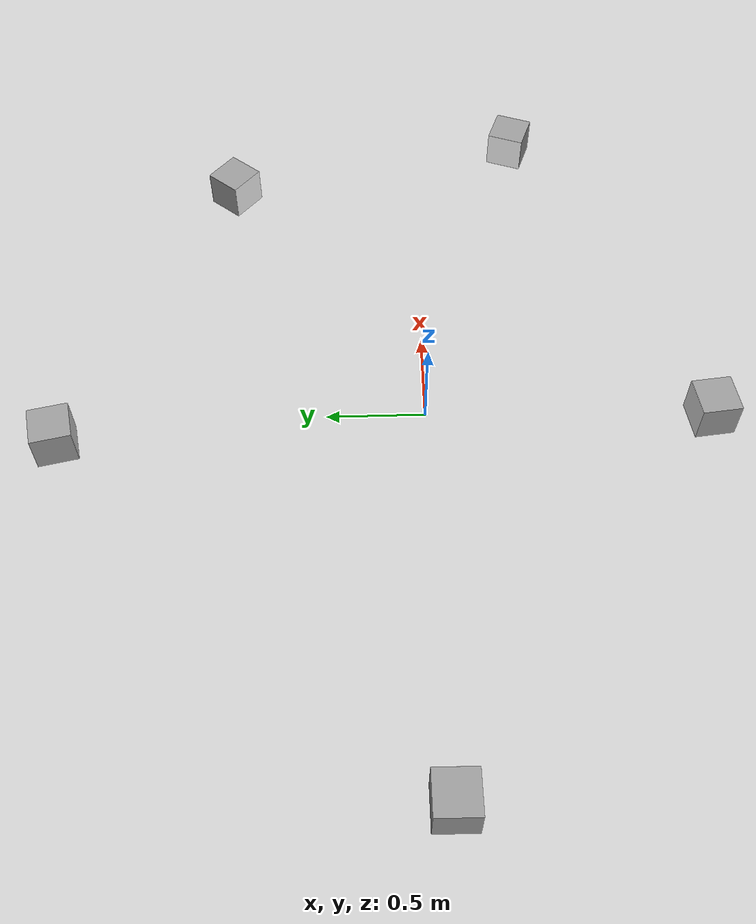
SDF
<sdf version="1.7">
 <world name="default">
  <light name="sun" type="directional">
   <pose>0 0 10 0 -0 0</pose>
   <diffuse>0.8 0.8 0.8 1</diffuse>
   <specular>0.2 0.2 0.2 1</specular>
   <attenuation>
    <range>1000</range>
    <constant>0.9</constant>
    <linear>0.01</linear>
    <quadratic>0.001</quadratic>
   </attenuation>
   <direction>-0.5 0.1 -0.9</direction>
   <spot><inner_angle>0</inner_angle><outer_angle>0</outer_angle><falloff>0</falloff></spot>
  </light>
  <model name="ground_plane">
   <static>1</static>
   <link name="link">
    <collision name="collision">
     <geometry><plane><normal>0 0 1</normal><size>100 100</size></plane></geometry>
     <surface>
      <contact><collide_bitmask>65535</collide_bitmask></contact>
      <friction><ode><mu>100</mu><mu2>50</mu2></ode></friction>
     </surface>
    </collision>
    <visual name="visual">
     <cast_shadows>0</cast_shadows>
     <geometry><plane><normal>0 0 1</normal><size>100 100</size></plane></geometry>
     <material>
      <script><uri>file://media/materials/scripts/gazebo.material</uri><name>Gazebo/Grey</name></script>
     </material>
    </visual>
   </link>
  </model>
  <gravity>0 0 -9.8</gravity>
  <magnetic_field>6e-06 2.3e-05 -4.2e-05</magnetic_field>
  <atmosphere type="adiabatic"/>
  <physics type="ode">
   <max_step_size>0.001</max_step_size>
   <real_time_factor>1</real_time_factor>
   <real_time_update_rate>1000</real_time_update_rate>
  </physics>
  <scene><ambient>0.4 0.4 0.4 1</ambient><background>0.7 0.7 0.7 1</background><shadows>1</shadows></scene>
  <spherical_coordinates>
   <surface_model>EARTH_WGS84</surface_model>
   <latitude_deg>0</latitude_deg>
   <longitude_deg>0</longitude_deg>
   <elevation>0</elevation>
   <heading_deg>0</heading_deg>
  </spherical_coordinates>
  <model name="Assignment1">
   <model name="marker11_box">
    <link name="marker">
     <inertial>
      <mass>0.1</mass>
      <inertia><ixx>0</ixx><ixy>0</ixy><ixz>0</ixz><iyy>0</iyy><iyz>0</iyz><izz>0</izz></inertia>
     </inertial>
     <self_collide>1</self_collide>
     <pose>-0.76428 -0.101106 0.120004 -0.015494 1.56996 -0.015507</pose>
     <visual name="visual">
      <geometry><box><size>0.2 0.2 0.001</size></box></geometry>
      <material>
       <script>
        <uri>model://marker11/material/scripts</uri>
        <uri>model://marker11/material/textures</uri>
        <name>Aruco/marker11</name>
       </script>
       <shader type="pixel"><normal_map>__default__</normal_map></shader>
       <emissive>0 0 0 1</emissive>
       <ambient>1 1 1 1</ambient>
       <diffuse>1 1 1 1</diffuse>
       <specular>0 0 0 1</specular>
      </material>
     </visual>
     <collision name="collision">
      <geometry><box><size>0.2 0.2 0.02</size></box></geometry>
      <surface>
       <friction>
        <ode><mu>1</mu><mu2>1</mu2><fdir1>0 0 0</fdir1><slip1>0</slip1><slip2>0</slip2></ode>
        <torsional>
         <coefficient>1</coefficient>
         <patch_radius>0</patch_radius>
         <surface_radius>0</surface_radius>
         <use_patch_radius>1</use_patch_radius>
         <ode><slip>0</slip></ode>
        </torsional>
       </friction>
       <bounce><restitution_coefficient>0</restitution_coefficient><threshold>1e+06</threshold></bounce>
       <contact>
        <collide_without_contact>0</collide_without_contact>
        <collide_without_contact_bitmask>1</collide_without_contact_bitmask>
        <collide_bitmask>1</collide_bitmask>
        <ode>
         <soft_cfm>0</soft_cfm>
         <soft_erp>0.2</soft_erp>
         <kp>1e+13</kp>
         <kd>1</kd>
         <max_vel>0.01</max_vel>
         <min_depth>0</min_depth>
        </ode>
        <bullet>
         <split_impulse>1</split_impulse>
         <split_impulse_penetration_threshold>-0.01</split_impulse_penetration_threshold>
         <soft_cfm>0</soft_cfm>
         <soft_erp>0.2</soft_erp>
         <kp>1e+13</kp>
         <kd>1</kd>
        </bullet>
       </contact>
      </surface>
     </collision>
    </link>
    <link name="link_1">
     <inertial>
      <mass>1</mass>
      <inertia>
       <ixx>0.166667</ixx>
       <ixy>0</ixy>
       <ixz>0</ixz>
       <iyy>0.166667</iyy>
       <iyz>0</iyz>
       <izz>0.166667</izz>
      </inertia>
     </inertial>
     <pose>-0.86428 -0.101106 0.12 -1.3e-05 -4.2e-05 0</pose>
     <visual name="visual">
      <geometry><box><size>0.2 0.2 0.2</size></box></geometry>
      <material>
       <lighting>1</lighting>
       <script><uri>file://media/materials/scripts/gazebo.material</uri><name>Gazebo/Grey</name></script>
       <shader type="pixel"><normal_map>__default__</normal_map></shader>
       <emissive>0 0 0 1</emissive>
       <ambient>0.3 0.3 0.3 1</ambient>
       <diffuse>0.7 0.7 0.7 1</diffuse>
       <specular>0.01 0.01 0.01 1</specular>
      </material>
     </visual>
     <collision name="collision">
      <geometry><box><size>0.2 0.2 0.2</size></box></geometry>
      <surface>
       <friction>
        <ode><mu>1</mu><mu2>1</mu2><fdir1>0 0 0</fdir1><slip1>0</slip1><slip2>0</slip2></ode>
        <torsional>
         <coefficient>1</coefficient>
         <patch_radius>0</patch_radius>
         <surface_radius>0</surface_radius>
         <use_patch_radius>1</use_patch_radius>
         <ode><slip>0</slip></ode>
        </torsional>
       </friction>
       <bounce><restitution_coefficient>0</restitution_coefficient><threshold>1e+06</threshold></bounce>
       <contact>
        <collide_without_contact>0</collide_without_contact>
        <collide_without_contact_bitmask>1</collide_without_contact_bitmask>
        <collide_bitmask>1</collide_bitmask>
        <ode>
         <soft_cfm>0</soft_cfm>
         <soft_erp>0.2</soft_erp>
         <kp>1e+13</kp>
         <kd>1</kd>
         <max_vel>0.01</max_vel>
         <min_depth>0</min_depth>
        </ode>
        <bullet>
         <split_impulse>1</split_impulse>
         <split_impulse_penetration_threshold>-0.01</split_impulse_penetration_threshold>
         <soft_cfm>0</soft_cfm>
         <soft_erp>0.2</soft_erp>
         <kp>1e+13</kp>
         <kd>1</kd>
        </bullet>
       </contact>
      </surface>
     </collision>
    </link>
    <joint name="link_1_JOINT_3" type="fixed">
     <parent>link_1</parent>
     <child>marker</child>
     <physics>
      <ode><limit><cfm>0</cfm><erp>0.2</erp></limit><suspension><cfm>0</cfm><erp>0.2</erp></suspension></ode>
     </physics>
    </joint>
    <static>0</static>
    <pose>-1.30529 -0.013891 0 0 -0 0</pose>
   </model>
   <model name="marker12_box">
    <link name="marker">
     <inertial>
      <mass>0.1</mass>
      <inertia><ixx>0</ixx><ixy>0</ixy><ixz>0</ixz><iyy>0</iyy><iyz>0</iyz><izz>0</izz></inertia>
     </inertial>
     <self_collide>1</self_collide>
     <pose>-0.76428 -0.101106 0.120004 -0.015494 1.56996 -0.015507</pose>
     <visual name="visual">
      <geometry><box><size>0.2 0.2 0.001</size></box></geometry>
      <material>
       <script>
        <uri>model://marker12/material/scripts</uri>
        <uri>model://marker12/material/textures</uri>
        <name>Aruco/marker12</name>
       </script>
       <shader type="pixel"><normal_map>__default__</normal_map></shader>
       <emissive>0 0 0 1</emissive>
       <ambient>1 1 1 1</ambient>
       <diffuse>1 1 1 1</diffuse>
       <specular>0 0 0 1</specular>
      </material>
     </visual>
     <collision name="collision">
      <geometry><box><size>0.2 0.2 0.02</size></box></geometry>
      <surface>
       <friction>
        <ode><mu>1</mu><mu2>1</mu2><fdir1>0 0 0</fdir1><slip1>0</slip1><slip2>0</slip2></ode>
        <torsional>
         <coefficient>1</coefficient>
         <patch_radius>0</patch_radius>
         <surface_radius>0</surface_radius>
         <use_patch_radius>1</use_patch_radius>
         <ode><slip>0</slip></ode>
        </torsional>
       </friction>
       <bounce><restitution_coefficient>0</restitution_coefficient><threshold>1e+06</threshold></bounce>
       <contact>
        <collide_without_contact>0</collide_without_contact>
        <collide_without_contact_bitmask>1</collide_without_contact_bitmask>
        <collide_bitmask>1</collide_bitmask>
        <ode>
         <soft_cfm>0</soft_cfm>
         <soft_erp>0.2</soft_erp>
         <kp>1e+13</kp>
         <kd>1</kd>
         <max_vel>0.01</max_vel>
         <min_depth>0</min_depth>
        </ode>
        <bullet>
         <split_impulse>1</split_impulse>
         <split_impulse_penetration_threshold>-0.01</split_impulse_penetration_threshold>
         <soft_cfm>0</soft_cfm>
         <soft_erp>0.2</soft_erp>
         <kp>1e+13</kp>
         <kd>1</kd>
        </bullet>
       </contact>
      </surface>
     </collision>
    </link>
    <link name="link_1">
     <inertial>
      <mass>1</mass>
      <inertia>
       <ixx>0.166667</ixx>
       <ixy>0</ixy>
       <ixz>0</ixz>
       <iyy>0.166667</iyy>
       <iyz>0</iyz>
       <izz>0.166667</izz>
      </inertia>
     </inertial>
     <pose>-0.86428 -0.101106 0.12 -1.3e-05 -4.2e-05 0</pose>
     <visual name="visual">
      <geometry><box><size>0.2 0.2 0.2</size></box></geometry>
      <material>
       <lighting>1</lighting>
       <script><uri>file://media/materials/scripts/gazebo.material</uri><name>Gazebo/Grey</name></script>
       <shader type="pixel"><normal_map>__default__</normal_map></shader>
       <emissive>0 0 0 1</emissive>
       <ambient>0.3 0.3 0.3 1</ambient>
       <diffuse>0.7 0.7 0.7 1</diffuse>
       <specular>0.01 0.01 0.01 1</specular>
      </material>
     </visual>
     <collision name="collision">
      <geometry><box><size>0.2 0.2 0.2</size></box></geometry>
      <surface>
       <friction>
        <ode><mu>1</mu><mu2>1</mu2><fdir1>0 0 0</fdir1><slip1>0</slip1><slip2>0</slip2></ode>
        <torsional>
         <coefficient>1</coefficient>
         <patch_radius>0</patch_radius>
         <surface_radius>0</surface_radius>
         <use_patch_radius>1</use_patch_radius>
         <ode><slip>0</slip></ode>
        </torsional>
       </friction>
       <bounce><restitution_coefficient>0</restitution_coefficient><threshold>1e+06</threshold></bounce>
       <contact>
        <collide_without_contact>0</collide_without_contact>
        <collide_without_contact_bitmask>1</collide_without_contact_bitmask>
        <collide_bitmask>1</collide_bitmask>
        <ode>
         <soft_cfm>0</soft_cfm>
         <soft_erp>0.2</soft_erp>
         <kp>1e+13</kp>
         <kd>1</kd>
         <max_vel>0.01</max_vel>
         <min_depth>0</min_depth>
        </ode>
        <bullet>
         <split_impulse>1</split_impulse>
         <split_impulse_penetration_threshold>-0.01</split_impulse_penetration_threshold>
         <soft_cfm>0</soft_cfm>
         <soft_erp>0.2</soft_erp>
         <kp>1e+13</kp>
         <kd>1</kd>
        </bullet>
       </contact>
      </surface>
     </collision>
    </link>
    <joint name="link_1_JOINT_3" type="fixed">
     <parent>link_1</parent>
     <child>marker</child>
     <physics>
      <ode><limit><cfm>0</cfm><erp>0.2</erp></limit><suspension><cfm>0</cfm><erp>0.2</erp></suspension></ode>
     </physics>
    </joint>
    <static>0</static>
    <pose>-0.064336 0.923449 0 0 0 -1.35227</pose>
   </model>
   <model name="marker13_box">
    <link name="marker">
     <inertial>
      <mass>0.1</mass>
      <inertia><ixx>0</ixx><ixy>0</ixy><ixz>0</ixz><iyy>0</iyy><iyz>0</iyz><izz>0</izz></inertia>
     </inertial>
     <self_collide>1</self_collide>
     <pose>-0.76428 -0.101106 0.120004 -0.015494 1.56996 -0.015507</pose>
     <visual name="visual">
      <geometry><box><size>0.2 0.2 0.001</size></box></geometry>
      <material>
       <script>
        <uri>model://marker13/material/scripts</uri>
        <uri>model://marker13/material/textures</uri>
        <name>Aruco/marker13</name>
       </script>
       <shader type="pixel"><normal_map>__default__</normal_map></shader>
       <emissive>0 0 0 1</emissive>
       <ambient>1 1 1 1</ambient>
       <diffuse>1 1 1 1</diffuse>
       <specular>0 0 0 1</specular>
      </material>
     </visual>
     <collision name="collision">
      <geometry><box><size>0.2 0.2 0.02</size></box></geometry>
      <surface>
       <friction>
        <ode><mu>1</mu><mu2>1</mu2><fdir1>0 0 0</fdir1><slip1>0</slip1><slip2>0</slip2></ode>
        <torsional>
         <coefficient>1</coefficient>
         <patch_radius>0</patch_radius>
         <surface_radius>0</surface_radius>
         <use_patch_radius>1</use_patch_radius>
         <ode><slip>0</slip></ode>
        </torsional>
       </friction>
       <bounce><restitution_coefficient>0</restitution_coefficient><threshold>1e+06</threshold></bounce>
       <contact>
        <collide_without_contact>0</collide_without_contact>
        <collide_without_contact_bitmask>1</collide_without_contact_bitmask>
        <collide_bitmask>1</collide_bitmask>
        <ode>
         <soft_cfm>0</soft_cfm>
         <soft_erp>0.2</soft_erp>
         <kp>1e+13</kp>
         <kd>1</kd>
         <max_vel>0.01</max_vel>
         <min_depth>0</min_depth>
        </ode>
        <bullet>
         <split_impulse>1</split_impulse>
         <split_impulse_penetration_threshold>-0.01</split_impulse_penetration_threshold>
         <soft_cfm>0</soft_cfm>
         <soft_erp>0.2</soft_erp>
         <kp>1e+13</kp>
         <kd>1</kd>
        </bullet>
       </contact>
      </surface>
     </collision>
    </link>
    <link name="link_1">
     <inertial>
      <mass>1</mass>
      <inertia>
       <ixx>0.166667</ixx>
       <ixy>0</ixy>
       <ixz>0</ixz>
       <iyy>0.166667</iyy>
       <iyz>0</iyz>
       <izz>0.166667</izz>
      </inertia>
     </inertial>
     <pose>-0.86428 -0.101106 0.12 -1.3e-05 -4.2e-05 0</pose>
     <visual name="visual">
      <geometry><box><size>0.2 0.2 0.2</size></box></geometry>
      <material>
       <lighting>1</lighting>
       <script><uri>file://media/materials/scripts/gazebo.material</uri><name>Gazebo/Grey</name></script>
       <shader type="pixel"><normal_map>__default__</normal_map></shader>
       <emissive>0 0 0 1</emissive>
       <ambient>0.3 0.3 0.3 1</ambient>
       <diffuse>0.7 0.7 0.7 1</diffuse>
       <specular>0.01 0.01 0.01 1</specular>
      </material>
     </visual>
     <collision name="collision">
      <geometry><box><size>0.2 0.2 0.2</size></box></geometry>
      <surface>
       <friction>
        <ode><mu>1</mu><mu2>1</mu2><fdir1>0 0 0</fdir1><slip1>0</slip1><slip2>0</slip2></ode>
        <torsional>
         <coefficient>1</coefficient>
         <patch_radius>0</patch_radius>
         <surface_radius>0</surface_radius>
         <use_patch_radius>1</use_patch_radius>
         <ode><slip>0</slip></ode>
        </torsional>
       </friction>
       <bounce><restitution_coefficient>0</restitution_coefficient><threshold>1e+06</threshold></bounce>
       <contact>
        <collide_without_contact>0</collide_without_contact>
        <collide_without_contact_bitmask>1</collide_without_contact_bitmask>
        <collide_bitmask>1</collide_bitmask>
        <ode>
         <soft_cfm>0</soft_cfm>
         <soft_erp>0.2</soft_erp>
         <kp>1e+13</kp>
         <kd>1</kd>
         <max_vel>0.01</max_vel>
         <min_depth>0</min_depth>
        </ode>
        <bullet>
         <split_impulse>1</split_impulse>
         <split_impulse_penetration_threshold>-0.01</split_impulse_penetration_threshold>
         <soft_cfm>0</soft_cfm>
         <soft_erp>0.2</soft_erp>
         <kp>1e+13</kp>
         <kd>1</kd>
        </bullet>
       </contact>
      </surface>
     </collision>
    </link>
    <joint name="link_1_JOINT_3" type="fixed">
     <parent>link_1</parent>
     <child>marker</child>
     <physics>
      <ode><limit><cfm>0</cfm><erp>0.2</erp></limit><suspension><cfm>0</cfm><erp>0.2</erp></suspension></ode>
     </physics>
    </joint>
    <static>0</static>
    <pose>0.92278 0.217361 0 0 0 -2.2672</pose>
   </model>
   <model name="marker14_box">
    <link name="marker">
     <inertial>
      <mass>0.1</mass>
      <inertia><ixx>0</ixx><ixy>0</ixy><ixz>0</ixz><iyy>0</iyy><iyz>0</iyz><izz>0</izz></inertia>
     </inertial>
     <self_collide>1</self_collide>
     <pose>-0.76428 -0.101106 0.120004 -0.015494 1.56996 -0.015507</pose>
     <visual name="visual">
      <geometry><box><size>0.2 0.2 0.001</size></box></geometry>
      <material>
       <script>
        <uri>model://marker14/material/scripts</uri>
        <uri>model://marker14/material/textures</uri>
        <name>Aruco/marker14</name>
       </script>
       <shader type="pixel"><normal_map>__default__</normal_map></shader>
       <emissive>0 0 0 1</emissive>
       <ambient>1 1 1 1</ambient>
       <diffuse>1 1 1 1</diffuse>
       <specular>0 0 0 1</specular>
      </material>
     </visual>
     <collision name="collision">
      <geometry><box><size>0.2 0.2 0.02</size></box></geometry>
      <surface>
       <friction>
        <ode><mu>1</mu><mu2>1</mu2><fdir1>0 0 0</fdir1><slip1>0</slip1><slip2>0</slip2></ode>
        <torsional>
         <coefficient>1</coefficient>
         <patch_radius>0</patch_radius>
         <surface_radius>0</surface_radius>
         <use_patch_radius>1</use_patch_radius>
         <ode><slip>0</slip></ode>
        </torsional>
       </friction>
       <bounce><restitution_coefficient>0</restitution_coefficient><threshold>1e+06</threshold></bounce>
       <contact>
        <collide_without_contact>0</collide_without_contact>
        <collide_without_contact_bitmask>1</collide_without_contact_bitmask>
        <collide_bitmask>1</collide_bitmask>
        <ode>
         <soft_cfm>0</soft_cfm>
         <soft_erp>0.2</soft_erp>
         <kp>1e+13</kp>
         <kd>1</kd>
         <max_vel>0.01</max_vel>
         <min_depth>0</min_depth>
        </ode>
        <bullet>
         <split_impulse>1</split_impulse>
         <split_impulse_penetration_threshold>-0.01</split_impulse_penetration_threshold>
         <soft_cfm>0</soft_cfm>
         <soft_erp>0.2</soft_erp>
         <kp>1e+13</kp>
         <kd>1</kd>
        </bullet>
       </contact>
      </surface>
     </collision>
    </link>
    <link name="link_1">
     <inertial>
      <mass>1</mass>
      <inertia>
       <ixx>0.166667</ixx>
       <ixy>0</ixy>
       <ixz>0</ixz>
       <iyy>0.166667</iyy>
       <iyz>0</iyz>
       <izz>0.166667</izz>
      </inertia>
     </inertial>
     <pose>-0.86428 -0.101106 0.12 -1.3e-05 -4.2e-05 0</pose>
     <visual name="visual">
      <geometry><box><size>0.2 0.2 0.2</size></box></geometry>
      <material>
       <lighting>1</lighting>
       <script><uri>file://media/materials/scripts/gazebo.material</uri><name>Gazebo/Grey</name></script>
       <shader type="pixel"><normal_map>__default__</normal_map></shader>
       <emissive>0 0 0 1</emissive>
       <ambient>0.3 0.3 0.3 1</ambient>
       <diffuse>0.7 0.7 0.7 1</diffuse>
       <specular>0.01 0.01 0.01 1</specular>
      </material>
     </visual>
     <collision name="collision">
      <geometry><box><size>0.2 0.2 0.2</size></box></geometry>
      <surface>
       <friction>
        <ode><mu>1</mu><mu2>1</mu2><fdir1>0 0 0</fdir1><slip1>0</slip1><slip2>0</slip2></ode>
        <torsional>
         <coefficient>1</coefficient>
         <patch_radius>0</patch_radius>
         <surface_radius>0</surface_radius>
         <use_patch_radius>1</use_patch_radius>
         <ode><slip>0</slip></ode>
        </torsional>
       </friction>
       <bounce><restitution_coefficient>0</restitution_coefficient><threshold>1e+06</threshold></bounce>
       <contact>
        <collide_without_contact>0</collide_without_contact>
        <collide_without_contact_bitmask>1</collide_without_contact_bitmask>
        <collide_bitmask>1</collide_bitmask>
        <ode>
         <soft_cfm>0</soft_cfm>
         <soft_erp>0.2</soft_erp>
         <kp>1e+13</kp>
         <kd>1</kd>
         <max_vel>0.01</max_vel>
         <min_depth>0</min_depth>
        </ode>
        <bullet>
         <split_impulse>1</split_impulse>
         <split_impulse_penetration_threshold>-0.01</split_impulse_penetration_threshold>
         <soft_cfm>0</soft_cfm>
         <soft_erp>0.2</soft_erp>
         <kp>1e+13</kp>
         <kd>1</kd>
        </bullet>
       </contact>
      </surface>
     </collision>
    </link>
    <joint name="link_1_JOINT_3" type="fixed">
     <parent>link_1</parent>
     <child>marker</child>
     <physics>
      <ode><limit><cfm>0</cfm><erp>0.2</erp></limit><suspension><cfm>0</cfm><erp>0.2</erp></suspension></ode>
     </physics>
    </joint>
    <static>0</static>
    <pose>0.906923 -0.462839 0 0 -0 2.78812</pose>
   </model>
   <model name="marker15_box">
    <link name="marker">
     <inertial>
      <mass>0.1</mass>
      <inertia><ixx>0</ixx><ixy>0</ixy><ixz>0</ixz><iyy>0</iyy><iyz>0</iyz><izz>0</izz></inertia>
     </inertial>
     <self_collide>1</self_collide>
     <pose>-0.76428 -0.101106 0.120004 -0.015494 1.56996 -0.015507</pose>
     <visual name="visual">
      <geometry><box><size>0.2 0.2 0.001</size></box></geometry>
      <material>
       <script>
        <uri>model://marker15/material/scripts</uri>
        <uri>model://marker15/material/textures</uri>
        <name>Aruco/marker15</name>
       </script>
       <shader type="pixel"><normal_map>__default__</normal_map></shader>
       <emissive>0 0 0 1</emissive>
       <ambient>1 1 1 1</ambient>
       <diffuse>1 1 1 1</diffuse>
       <specular>0 0 0 1</specular>
      </material>
     </visual>
     <collision name="collision">
      <geometry><box><size>0.2 0.2 0.02</size></box></geometry>
      <surface>
       <friction>
        <ode><mu>1</mu><mu2>1</mu2><fdir1>0 0 0</fdir1><slip1>0</slip1><slip2>0</slip2></ode>
        <torsional>
         <coefficient>1</coefficient>
         <patch_radius>0</patch_radius>
         <surface_radius>0</surface_radius>
         <use_patch_radius>1</use_patch_radius>
         <ode><slip>0</slip></ode>
        </torsional>
       </friction>
       <bounce><restitution_coefficient>0</restitution_coefficient><threshold>1e+06</threshold></bounce>
       <contact>
        <collide_without_contact>0</collide_without_contact>
        <collide_without_contact_bitmask>1</collide_without_contact_bitmask>
        <collide_bitmask>1</collide_bitmask>
        <ode>
         <soft_cfm>0</soft_cfm>
         <soft_erp>0.2</soft_erp>
         <kp>1e+13</kp>
         <kd>1</kd>
         <max_vel>0.01</max_vel>
         <min_depth>0</min_depth>
        </ode>
        <bullet>
         <split_impulse>1</split_impulse>
         <split_impulse_penetration_threshold>-0.01</split_impulse_penetration_threshold>
         <soft_cfm>0</soft_cfm>
         <soft_erp>0.2</soft_erp>
         <kp>1e+13</kp>
         <kd>1</kd>
        </bullet>
       </contact>
      </surface>
     </collision>
    </link>
    <link name="link_1">
     <inertial>
      <mass>1</mass>
      <inertia>
       <ixx>0.166667</ixx>
       <ixy>0</ixy>
       <ixz>0</ixz>
       <iyy>0.166667</iyy>
       <iyz>0</iyz>
       <izz>0.166667</izz>
      </inertia>
     </inertial>
     <pose>-0.86428 -0.101106 0.12 -1.3e-05 -4.2e-05 0</pose>
     <visual name="visual">
      <geometry><box><size>0.2 0.2 0.2</size></box></geometry>
      <material>
       <lighting>1</lighting>
       <script><uri>file://media/materials/scripts/gazebo.material</uri><name>Gazebo/Grey</name></script>
       <shader type="pixel"><normal_map>__default__</normal_map></shader>
       <emissive>0 0 0 1</emissive>
       <ambient>0.3 0.3 0.3 1</ambient>
       <diffuse>0.7 0.7 0.7 1</diffuse>
       <specular>0.01 0.01 0.01 1</specular>
      </material>
     </visual>
     <collision name="collision">
      <geometry><box><size>0.2 0.2 0.2</size></box></geometry>
      <surface>
       <friction>
        <ode><mu>1</mu><mu2>1</mu2><fdir1>0 0 0</fdir1><slip1>0</slip1><slip2>0</slip2></ode>
        <torsional>
         <coefficient>1</coefficient>
         <patch_radius>0</patch_radius>
         <surface_radius>0</surface_radius>
         <use_patch_radius>1</use_patch_radius>
         <ode><slip>0</slip></ode>
        </torsional>
       </friction>
       <bounce><restitution_coefficient>0</restitution_coefficient><threshold>1e+06</threshold></bounce>
       <contact>
        <collide_without_contact>0</collide_without_contact>
        <collide_without_contact_bitmask>1</collide_without_contact_bitmask>
        <collide_bitmask>1</collide_bitmask>
        <ode>
         <soft_cfm>0</soft_cfm>
         <soft_erp>0.2</soft_erp>
         <kp>1e+13</kp>
         <kd>1</kd>
         <max_vel>0.01</max_vel>
         <min_depth>0</min_depth>
        </ode>
        <bullet>
         <split_impulse>1</split_impulse>
         <split_impulse_penetration_threshold>-0.01</split_impulse_penetration_threshold>
         <soft_cfm>0</soft_cfm>
         <soft_erp>0.2</soft_erp>
         <kp>1e+13</kp>
         <kd>1</kd>
        </bullet>
       </contact>
      </surface>
     </collision>
    </link>
    <joint name="link_1_JOINT_3" type="fixed">
     <parent>link_1</parent>
     <child>marker</child>
     <physics>
      <ode><limit><cfm>0</cfm><erp>0.2</erp></limit><suspension><cfm>0</cfm><erp>0.2</erp></suspension></ode>
     </physics>
    </joint>
    <static>0</static>
    <pose>-0.460075 -0.664076 0 0 -0 1.69017</pose>
   </model>
   <static>0</static>
   <pose>0.188323 0.086376 -0 0 -0 0</pose>
  </model>
 </world>
</sdf>
